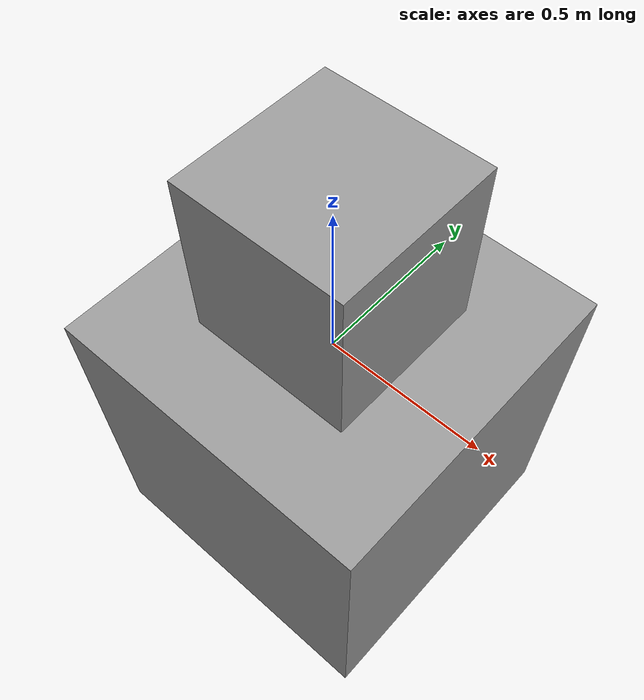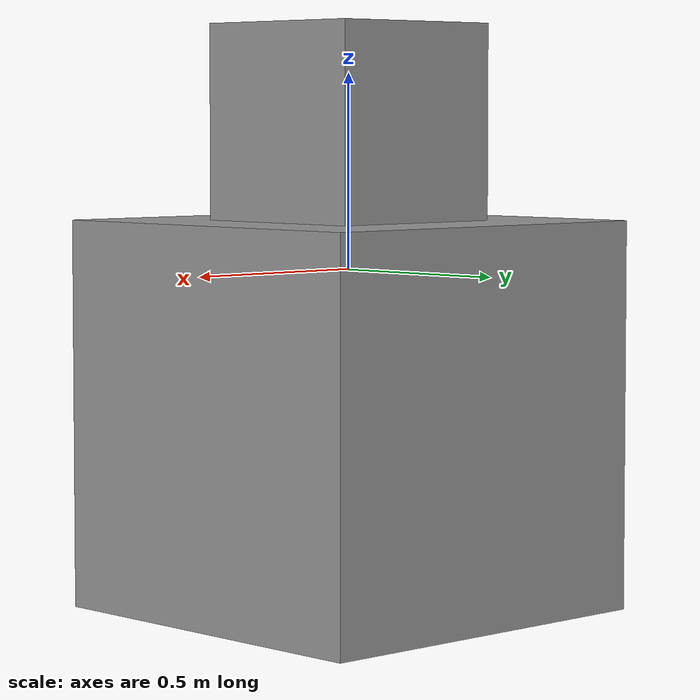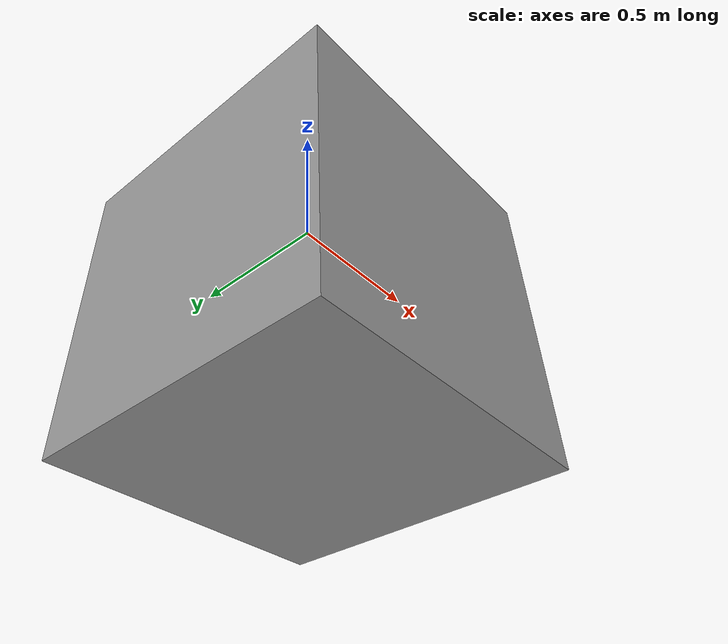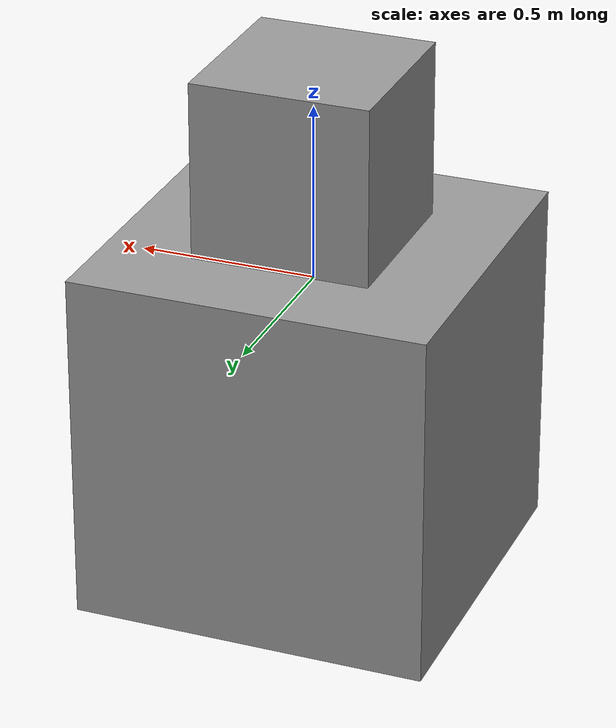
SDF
<?xml version='1.0'?>
<sdf version='1.6'>
  <model name='my_gazebo_robot'>
    <link name='link_0'>
      <inertial>
        <mass>1</mass>
        <inertia>
          <ixx>0.166667</ixx>
          <ixy>0</ixy>
          <ixz>0</ixz>
          <iyy>0.166667</iyy>
          <iyz>0</iyz>
          <izz>0.166667</izz>
        </inertia>
        <pose frame=''>0 0 0 0 -0 0</pose>
      </inertial>
      <pose frame=''>0 0 -0.375 0 -0 0</pose>
      <gravity>1</gravity>
      <self_collide>0</self_collide>
      <kinematic>0</kinematic>
      <enable_wind>0</enable_wind>
      <visual name='visual'>
        <pose frame=''>0 0 0 0 -0 0</pose>
        <geometry>
          <box>
            <size>1 1 1</size>
          </box>
        </geometry>
        <material>
          <lighting>1</lighting>
          <script>
            <uri>file://media/materials/scripts/gazebo.material</uri>
            <name>Gazebo/Grey</name>
          </script>
          <shader type='vertex'>
            <normal_map>__default__</normal_map>
          </shader>
          <ambient>0.3 0.3 0.3 1</ambient>
          <diffuse>0.7 0.7 0.7 1</diffuse>
          <specular>0.01 0.01 0.01 1</specular>
          <emissive>0 0 0 1</emissive>
        </material>
        <transparency>0</transparency>
        <cast_shadows>1</cast_shadows>
      </visual>
      <collision name='collision'>
        <laser_retro>0</laser_retro>
        <max_contacts>10</max_contacts>
        <pose frame=''>0 0 0 0 -0 0</pose>
        <geometry>
          <box>
            <size>1 1 1</size>
          </box>
        </geometry>
        <surface>
          <friction>
            <ode>
              <mu>1</mu>
              <mu2>1</mu2>
              <fdir1>0 0 0</fdir1>
              <slip1>0</slip1>
              <slip2>0</slip2>
            </ode>
            <torsional>
              <coefficient>1</coefficient>
              <patch_radius>0</patch_radius>
              <surface_radius>0</surface_radius>
              <use_patch_radius>1</use_patch_radius>
              <ode>
                <slip>0</slip>
              </ode>
            </torsional>
          </friction>
          <bounce>
            <restitution_coefficient>0</restitution_coefficient>
            <threshold>1e+06</threshold>
          </bounce>
          <contact>
            <collide_without_contact>0</collide_without_contact>
            <collide_without_contact_bitmask>1</collide_without_contact_bitmask>
            <collide_bitmask>1</collide_bitmask>
            <ode>
              <soft_cfm>0</soft_cfm>
              <soft_erp>0.2</soft_erp>
              <kp>1e+13</kp>
              <kd>1</kd>
              <max_vel>0.01</max_vel>
              <min_depth>0</min_depth>
            </ode>
            <bullet>
              <split_impulse>1</split_impulse>
              <split_impulse_penetration_threshold>-0.01</split_impulse_penetration_threshold>
              <soft_cfm>0</soft_cfm>
              <soft_erp>0.2</soft_erp>
              <kp>1e+13</kp>
              <kd>1</kd>
            </bullet>
          </contact>
        </surface>
      </collision>
    </link>
    <link name='link_2'>
      <sensor name='camera1' type='camera'>
        <camera name="head">
          <horizontal_fov>1.3962634</horizontal_fov>
          <image>
            <width>800</width>
            <height>800</height>
            <format>R8G8B8</format>
          </image>
          <clip>
            <near>0.02</near>
            <far>300</far>
          </clip>
        </camera>
        <always_on>1</always_on>
        <update_rate>30</update_rate>
        <visualize>1</visualize>
        <plugin name="camera_controller" filename="libgazebo_ros_camera.so">
          <alwaysOn>true</alwaysOn>
          <updateRate>0.0</updateRate>
          <cameraName>gazebo_cam1</cameraName>
          <imageTopicName>gazebo_image1</imageTopicName>
          <cameraInfoTopicName>camera_info</cameraInfoTopicName>
          <frameName>camera_link</frameName>
          <hackBaseline>0.07</hackBaseline>
          <distortionK1>0.0</distortionK1>
          <distortionK2>0.0</distortionK2>
          <distortionK3>0.0</distortionK3>
          <distortionT1>0.0</distortionT1>
          <distortionT2>0.0</distortionT2>
        </plugin>
      </sensor>
      <inertial>
        <mass>1</mass>
        <inertia>
          <ixx>0.166667</ixx>
          <ixy>0</ixy>
          <ixz>0</ixz>
          <iyy>0.166667</iyy>
          <iyz>0</iyz>
          <izz>0.166667</izz>
        </inertia>
        <pose frame=''>0 0 0 0 -0 0</pose>
      </inertial>
      <pose frame=''>0 0 0.375 0 -0 0</pose>
      <gravity>1</gravity>
      <self_collide>0</self_collide>
      <kinematic>0</kinematic>
      <enable_wind>0</enable_wind>
      <visual name='visual'>
        <pose frame=''>0 0 0 0 -0 0</pose>
        <geometry>
          <box>
            <size>0.5 0.5 0.5</size>
          </box>
        </geometry>
        <material>
          <lighting>1</lighting>
          <script>
            <uri>file://media/materials/scripts/gazebo.material</uri>
            <name>Gazebo/Grey</name>
          </script>
          <shader type='vertex'>
            <normal_map>__default__</normal_map>
          </shader>
          <ambient>0.3 0.3 0.3 1</ambient>
          <diffuse>0.7 0.7 0.7 1</diffuse>
          <specular>0.01 0.01 0.01 1</specular>
          <emissive>0 0 0 1</emissive>
        </material>
        <transparency>0</transparency>
        <cast_shadows>1</cast_shadows>
      </visual>
      <collision name='collision'>
        <laser_retro>0</laser_retro>
        <max_contacts>10</max_contacts>
        <pose frame=''>0 0 0 0 -0 0</pose>
        <geometry>
          <box>
            <size>0.5 0.5 0.5</size>
          </box>
        </geometry>
        <surface>
          <friction>
            <ode>
              <mu>1</mu>
              <mu2>1</mu2>
              <fdir1>0 0 0</fdir1>
              <slip1>0</slip1>
              <slip2>0</slip2>
            </ode>
            <torsional>
              <coefficient>1</coefficient>
              <patch_radius>0</patch_radius>
              <surface_radius>0</surface_radius>
              <use_patch_radius>1</use_patch_radius>
              <ode>
                <slip>0</slip>
              </ode>
            </torsional>
          </friction>
          <bounce>
            <restitution_coefficient>0</restitution_coefficient>
            <threshold>1e+06</threshold>
          </bounce>
          <contact>
            <collide_without_contact>0</collide_without_contact>
            <collide_without_contact_bitmask>1</collide_without_contact_bitmask>
            <collide_bitmask>1</collide_bitmask>
            <ode>
              <soft_cfm>0</soft_cfm>
              <soft_erp>0.2</soft_erp>
              <kp>1e+13</kp>
              <kd>1</kd>
              <max_vel>0.01</max_vel>
              <min_depth>0</min_depth>
            </ode>
            <bullet>
              <split_impulse>1</split_impulse>
              <split_impulse_penetration_threshold>-0.01</split_impulse_penetration_threshold>
              <soft_cfm>0</soft_cfm>
              <soft_erp>0.2</soft_erp>
              <kp>1e+13</kp>
              <kd>1</kd>
            </bullet>
          </contact>
        </surface>
      </collision>
    </link>
    <joint name='link_0_JOINT_0' type='fixed'>
      <parent>link_0</parent>
      <child>link_2</child>
      <pose frame=''>0 0 0 0 -0 0</pose>
      <physics>
        <ode>
          <limit>
            <cfm>0</cfm>
            <erp>0.2</erp>
          </limit>
          <suspension>
            <cfm>0</cfm>
            <erp>0.2</erp>
          </suspension>
        </ode>
      </physics>
    </joint>
    <static>0</static>
    <allow_auto_disable>1</allow_auto_disable>
  </model>
</sdf>
